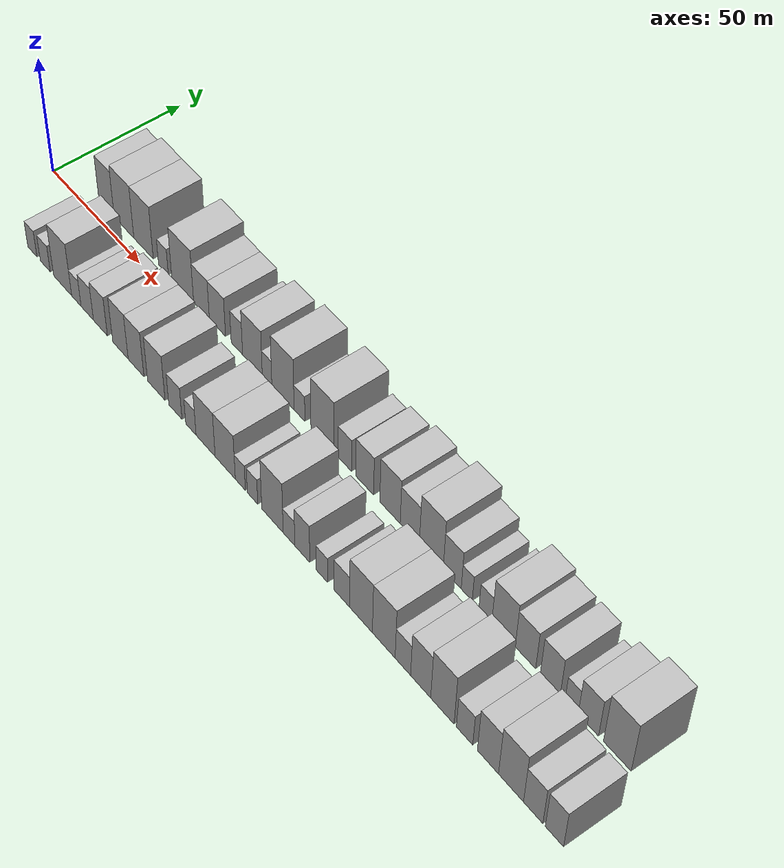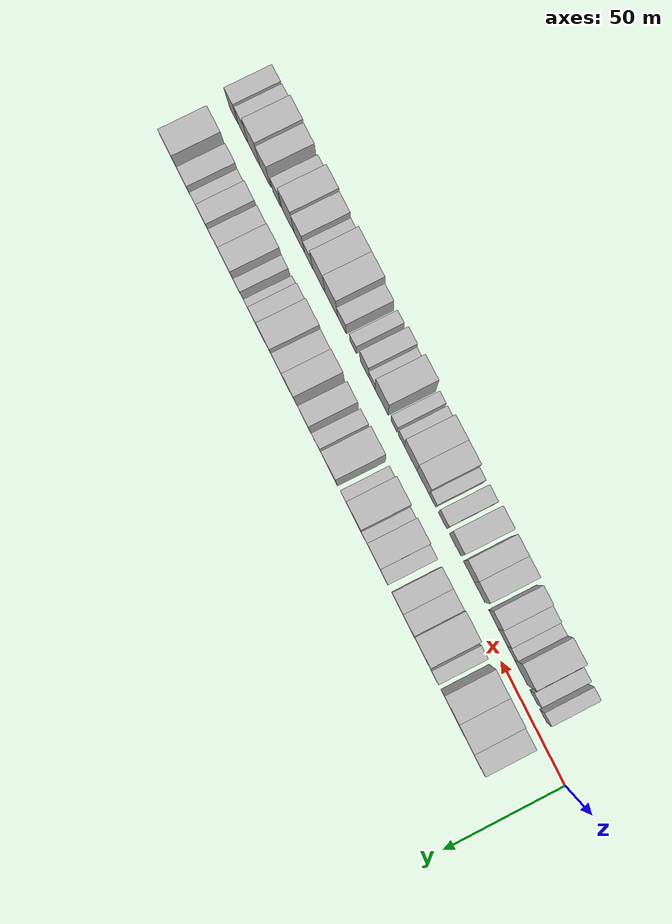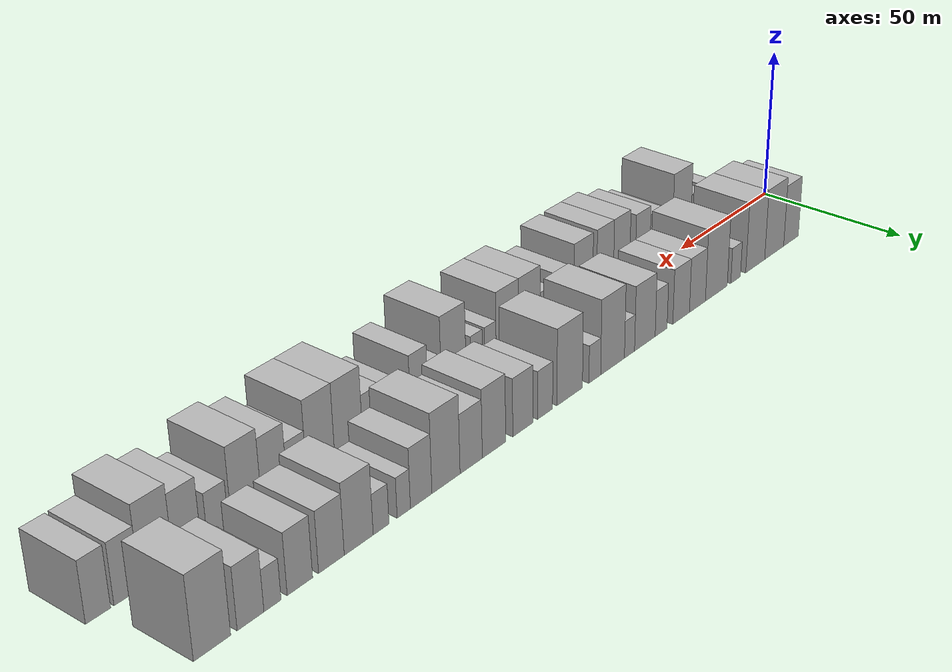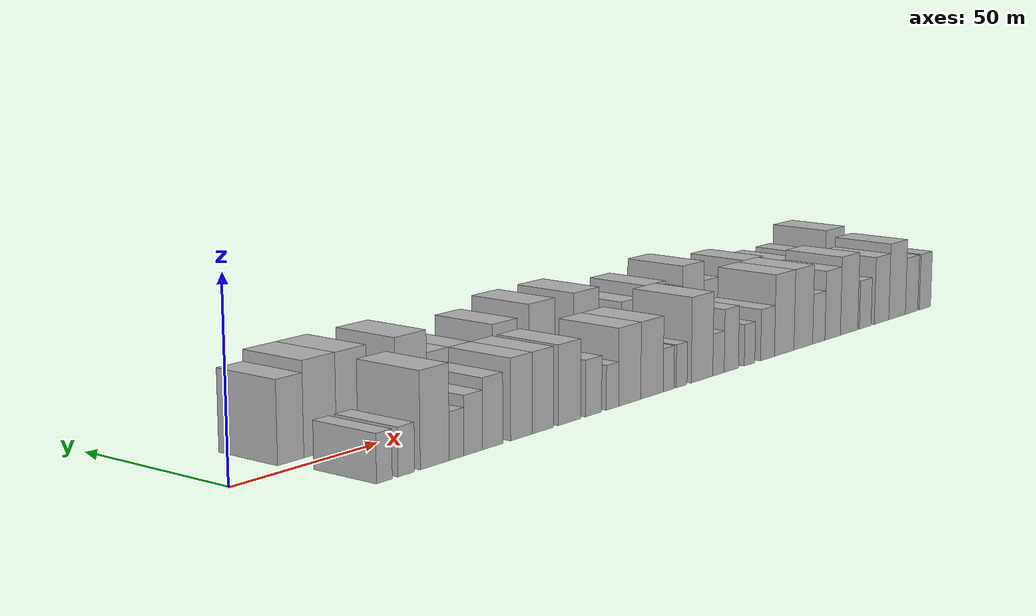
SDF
<sdf version="1.6">
 <world name="default">
  <scene>
   <sky><clouds><speed>12</speed></clouds></sky>
   <ambient>0.4 0.4 0.4 1</ambient>
   <background>0.7 0.7 0.7 1</background>
   <shadows>1</shadows>
  </scene>
  <gravity>0 0 -9.8066</gravity>
  <magnetic_field>6e-06 2.3e-05 -4.2e-05</magnetic_field>
  <physics default="0" name="default_physics" type="ode">
   <ode>
    <solver>
     <type>quick</type>
     <iters>10</iters>
     <sor>1.0</sor>
     <use_dynamic_moi_rescaling>0</use_dynamic_moi_rescaling>
    </solver>
    <constraints>
     <cfm>0</cfm>
     <erp>0.2</erp>
     <contact_max_correcting_vel>100</contact_max_correcting_vel>
     <contact_surface_layer>0.001</contact_surface_layer>
    </constraints>
   </ode>
   <max_step_size>0.004</max_step_size>
   <real_time_factor>1</real_time_factor>
   <real_time_update_rate>250</real_time_update_rate>
  </physics>
  <light name="sun" type="directional">
   <pose>0 0 10 0 0 0</pose>
   <diffuse>0.8 0.8 0.8 1</diffuse>
   <specular>0.2 0.2 0.2 1</specular>
   <attenuation>
    <range>1000</range>
    <constant>0.9</constant>
    <linear>0.01</linear>
    <quadratic>0.001</quadratic>
   </attenuation>
   <direction>-0.5 0.1 -0.9</direction>
  </light>
  <model name="building_1">
   <static>1</static>
   <pose>24.4363 14.5000 0 0.000000 0.000000 1.570796</pose>
   <link name="link">
    <pose>0 0 10.50 0 0 0</pose>
    <collision name="collision"><geometry><box><size>20.0000 8.8725 21.0000</size></box></geometry></collision>
    <visual name="visual">
     <cast_shadows>0</cast_shadows>
     <geometry><box><size>20.0000 8.8725 21.0000</size></box></geometry>
     <material>
      <script>
       <uri>model://HANNAS_wall/materials/scripts</uri>
       <uri>model://HANNAS_wall/materials/textures</uri>
       <name>vrc/HANNAS_wall</name>
      </script>
     </material>
    </visual>
   </link>
  </model>
  <model name="building_2">
   <static>1</static>
   <pose>34.5128 14.5000 0 0.000000 0.000000 1.570796</pose>
   <link name="link">
    <pose>0 0 12.00 0 0 0</pose>
    <collision name="collision"><geometry><box><size>20.0000 11.2806 24.0000</size></box></geometry></collision>
    <visual name="visual">
     <cast_shadows>0</cast_shadows>
     <geometry><box><size>20.0000 11.2806 24.0000</size></box></geometry>
     <material>
      <script>
       <uri>model://HANNAS_wall/materials/scripts</uri>
       <uri>model://HANNAS_wall/materials/textures</uri>
       <name>vrc/HANNAS_wall</name>
      </script>
     </material>
    </visual>
   </link>
  </model>
  <model name="building_3">
   <static>1</static>
   <pose>45.6453 14.5000 0 0.000000 0.000000 1.570796</pose>
   <link name="link">
    <pose>0 0 12.00 0 0 0</pose>
    <collision name="collision"><geometry><box><size>20.0000 10.9844 24.0000</size></box></geometry></collision>
    <visual name="visual">
     <cast_shadows>0</cast_shadows>
     <geometry><box><size>20.0000 10.9844 24.0000</size></box></geometry>
     <material>
      <script>
       <uri>model://HANNAS_wall/materials/scripts</uri>
       <uri>model://HANNAS_wall/materials/textures</uri>
       <name>vrc/HANNAS_wall</name>
      </script>
     </material>
    </visual>
   </link>
  </model>
  <model name="building_4">
   <static>1</static>
   <pose>56.8552 14.5000 0 0.000000 0.000000 1.570796</pose>
   <link name="link">
    <pose>0 0 6.00 0 0 0</pose>
    <collision name="collision"><geometry><box><size>20.0000 5.4354 12.0000</size></box></geometry></collision>
    <visual name="visual">
     <cast_shadows>0</cast_shadows>
     <geometry><box><size>20.0000 5.4354 12.0000</size></box></geometry>
     <material>
      <script>
       <uri>model://HANNAS_wall/materials/scripts</uri>
       <uri>model://HANNAS_wall/materials/textures</uri>
       <name>vrc/HANNAS_wall</name>
      </script>
     </material>
    </visual>
   </link>
  </model>
  <model name="building_5">
   <static>1</static>
   <pose>67.5638 14.5000 0 0.000000 0.000000 1.570796</pose>
   <link name="link">
    <pose>0 0 12.00 0 0 0</pose>
    <collision name="collision"><geometry><box><size>20.0000 11.9817 24.0000</size></box></geometry></collision>
    <visual name="visual">
     <cast_shadows>0</cast_shadows>
     <geometry><box><size>20.0000 11.9817 24.0000</size></box></geometry>
     <material>
      <script>
       <uri>model://HANNAS_wall/materials/scripts</uri>
       <uri>model://HANNAS_wall/materials/textures</uri>
       <name>vrc/HANNAS_wall</name>
      </script>
     </material>
    </visual>
   </link>
  </model>
  <model name="building_6">
   <static>1</static>
   <pose>77.8394 14.5000 0 0.000000 0.000000 1.570796</pose>
   <link name="link">
    <pose>0 0 9.00 0 0 0</pose>
    <collision name="collision"><geometry><box><size>20.0000 8.5696 18.0000</size></box></geometry></collision>
    <visual name="visual">
     <cast_shadows>0</cast_shadows>
     <geometry><box><size>20.0000 8.5696 18.0000</size></box></geometry>
     <material>
      <script>
       <uri>model://HANNAS_wall/materials/scripts</uri>
       <uri>model://HANNAS_wall/materials/textures</uri>
       <name>vrc/HANNAS_wall</name>
      </script>
     </material>
    </visual>
   </link>
  </model>
  <model name="building_7">
   <static>1</static>
   <pose>86.4592 14.5000 0 0.000000 0.000000 1.570796</pose>
   <link name="link">
    <pose>0 0 9.00 0 0 0</pose>
    <collision name="collision"><geometry><box><size>20.0000 8.6700 18.0000</size></box></geometry></collision>
    <visual name="visual">
     <cast_shadows>0</cast_shadows>
     <geometry><box><size>20.0000 8.6700 18.0000</size></box></geometry>
     <material>
      <script>
       <uri>model://HANNAS_wall/materials/scripts</uri>
       <uri>model://HANNAS_wall/materials/textures</uri>
       <name>vrc/HANNAS_wall</name>
      </script>
     </material>
    </visual>
   </link>
  </model>
  <model name="building_8">
   <static>1</static>
   <pose>96.8167 14.5000 0 0.000000 0.000000 1.570796</pose>
   <link name="link">
    <pose>0 0 7.50 0 0 0</pose>
    <collision name="collision"><geometry><box><size>20.0000 6.0451 15.0000</size></box></geometry></collision>
    <visual name="visual">
     <cast_shadows>0</cast_shadows>
     <geometry><box><size>20.0000 6.0451 15.0000</size></box></geometry>
     <material>
      <script>
       <uri>model://HANNAS_wall/materials/scripts</uri>
       <uri>model://HANNAS_wall/materials/textures</uri>
       <name>vrc/HANNAS_wall</name>
      </script>
     </material>
    </visual>
   </link>
  </model>
  <model name="building_9">
   <static>1</static>
   <pose>104.9794 14.5000 0 0.000000 0.000000 1.570796</pose>
   <link name="link">
    <pose>0 0 10.50 0 0 0</pose>
    <collision name="collision"><geometry><box><size>20.0000 10.2803 21.0000</size></box></geometry></collision>
    <visual name="visual">
     <cast_shadows>0</cast_shadows>
     <geometry><box><size>20.0000 10.2803 21.0000</size></box></geometry>
     <material>
      <script>
       <uri>model://HANNAS_wall/materials/scripts</uri>
       <uri>model://HANNAS_wall/materials/textures</uri>
       <name>vrc/HANNAS_wall</name>
      </script>
     </material>
    </visual>
   </link>
  </model>
  <model name="building_10">
   <static>1</static>
   <pose>112.5928 14.5000 0 0.000000 0.000000 1.570796</pose>
   <link name="link">
    <pose>0 0 6.00 0 0 0</pose>
    <collision name="collision"><geometry><box><size>20.0000 4.9466 12.0000</size></box></geometry></collision>
    <visual name="visual">
     <cast_shadows>0</cast_shadows>
     <geometry><box><size>20.0000 4.9466 12.0000</size></box></geometry>
     <material>
      <script>
       <uri>model://HANNAS_wall/materials/scripts</uri>
       <uri>model://HANNAS_wall/materials/textures</uri>
       <name>vrc/HANNAS_wall</name>
      </script>
     </material>
    </visual>
   </link>
  </model>
  <model name="building_11">
   <static>1</static>
   <pose>120.7552 14.5000 0 0.000000 0.000000 1.570796</pose>
   <link name="link">
    <pose>0 0 12.00 0 0 0</pose>
    <collision name="collision"><geometry><box><size>20.0000 11.3781 24.0000</size></box></geometry></collision>
    <visual name="visual">
     <cast_shadows>0</cast_shadows>
     <geometry><box><size>20.0000 11.3781 24.0000</size></box></geometry>
     <material>
      <script>
       <uri>model://HANNAS_wall/materials/scripts</uri>
       <uri>model://HANNAS_wall/materials/textures</uri>
       <name>vrc/HANNAS_wall</name>
      </script>
     </material>
    </visual>
   </link>
  </model>
  <model name="building_12">
   <static>1</static>
   <pose>129.1817 14.5000 0 0.000000 0.000000 1.570796</pose>
   <link name="link">
    <pose>0 0 6.00 0 0 0</pose>
    <collision name="collision"><geometry><box><size>20.0000 5.4750 12.0000</size></box></geometry></collision>
    <visual name="visual">
     <cast_shadows>0</cast_shadows>
     <geometry><box><size>20.0000 5.4750 12.0000</size></box></geometry>
     <material>
      <script>
       <uri>model://HANNAS_wall/materials/scripts</uri>
       <uri>model://HANNAS_wall/materials/textures</uri>
       <name>vrc/HANNAS_wall</name>
      </script>
     </material>
    </visual>
   </link>
  </model>
  <model name="building_13">
   <static>1</static>
   <pose>140.6729 14.5000 0 0.000000 0.000000 1.570796</pose>
   <link name="link">
    <pose>0 0 12.00 0 0 0</pose>
    <collision name="collision"><geometry><box><size>20.0000 11.5074 24.0000</size></box></geometry></collision>
    <visual name="visual">
     <cast_shadows>0</cast_shadows>
     <geometry><box><size>20.0000 11.5074 24.0000</size></box></geometry>
     <material>
      <script>
       <uri>model://HANNAS_wall/materials/scripts</uri>
       <uri>model://HANNAS_wall/materials/textures</uri>
       <name>vrc/HANNAS_wall</name>
      </script>
     </material>
    </visual>
   </link>
  </model>
  <model name="building_14">
   <static>1</static>
   <pose>151.7256 14.5000 0 0.000000 0.000000 1.570796</pose>
   <link name="link">
    <pose>0 0 7.50 0 0 0</pose>
    <collision name="collision"><geometry><box><size>20.0000 6.5979 15.0000</size></box></geometry></collision>
    <visual name="visual">
     <cast_shadows>0</cast_shadows>
     <geometry><box><size>20.0000 6.5979 15.0000</size></box></geometry>
     <material>
      <script>
       <uri>model://HANNAS_wall/materials/scripts</uri>
       <uri>model://HANNAS_wall/materials/textures</uri>
       <name>vrc/HANNAS_wall</name>
      </script>
     </material>
    </visual>
   </link>
  </model>
  <model name="building_15">
   <static>1</static>
   <pose>161.3414 14.5000 0 0.000000 0.000000 1.570796</pose>
   <link name="link">
    <pose>0 0 9.00 0 0 0</pose>
    <collision name="collision"><geometry><box><size>20.0000 8.6339 18.0000</size></box></geometry></collision>
    <visual name="visual">
     <cast_shadows>0</cast_shadows>
     <geometry><box><size>20.0000 8.6339 18.0000</size></box></geometry>
     <material>
      <script>
       <uri>model://HANNAS_wall/materials/scripts</uri>
       <uri>model://HANNAS_wall/materials/textures</uri>
       <name>vrc/HANNAS_wall</name>
      </script>
     </material>
    </visual>
   </link>
  </model>
  <model name="building_16">
   <static>1</static>
   <pose>173.5010 14.5000 0 0.000000 0.000000 1.570796</pose>
   <link name="link">
    <pose>0 0 10.50 0 0 0</pose>
    <collision name="collision"><geometry><box><size>20.0000 9.6852 21.0000</size></box></geometry></collision>
    <visual name="visual">
     <cast_shadows>0</cast_shadows>
     <geometry><box><size>20.0000 9.6852 21.0000</size></box></geometry>
     <material>
      <script>
       <uri>model://HANNAS_wall/materials/scripts</uri>
       <uri>model://HANNAS_wall/materials/textures</uri>
       <name>vrc/HANNAS_wall</name>
      </script>
     </material>
    </visual>
   </link>
  </model>
  <model name="building_17">
   <static>1</static>
   <pose>182.8265 14.5000 0 0.000000 0.000000 1.570796</pose>
   <link name="link">
    <pose>0 0 9.00 0 0 0</pose>
    <collision name="collision"><geometry><box><size>20.0000 8.9659 18.0000</size></box></geometry></collision>
    <visual name="visual">
     <cast_shadows>0</cast_shadows>
     <geometry><box><size>20.0000 8.9659 18.0000</size></box></geometry>
     <material>
      <script>
       <uri>model://HANNAS_wall/materials/scripts</uri>
       <uri>model://HANNAS_wall/materials/textures</uri>
       <name>vrc/HANNAS_wall</name>
      </script>
     </material>
    </visual>
   </link>
  </model>
  <model name="building_18">
   <static>1</static>
   <pose>192.8159 14.5000 0 0.000000 0.000000 1.570796</pose>
   <link name="link">
    <pose>0 0 12.00 0 0 0</pose>
    <collision name="collision"><geometry><box><size>20.0000 11.0129 24.0000</size></box></geometry></collision>
    <visual name="visual">
     <cast_shadows>0</cast_shadows>
     <geometry><box><size>20.0000 11.0129 24.0000</size></box></geometry>
     <material>
      <script>
       <uri>model://HANNAS_wall/materials/scripts</uri>
       <uri>model://HANNAS_wall/materials/textures</uri>
       <name>vrc/HANNAS_wall</name>
      </script>
     </material>
    </visual>
   </link>
  </model>
  <model name="building_19">
   <static>1</static>
   <pose>202.4088 14.5000 0 0.000000 0.000000 1.570796</pose>
   <link name="link">
    <pose>0 0 9.00 0 0 0</pose>
    <collision name="collision"><geometry><box><size>20.0000 8.1729 18.0000</size></box></geometry></collision>
    <visual name="visual">
     <cast_shadows>0</cast_shadows>
     <geometry><box><size>20.0000 8.1729 18.0000</size></box></geometry>
     <material>
      <script>
       <uri>model://HANNAS_wall/materials/scripts</uri>
       <uri>model://HANNAS_wall/materials/textures</uri>
       <name>vrc/HANNAS_wall</name>
      </script>
     </material>
    </visual>
   </link>
  </model>
  <model name="building_20">
   <static>1</static>
   <pose>208.9782 14.5000 0 0.000000 0.000000 1.570796</pose>
   <link name="link">
    <pose>0 0 6.00 0 0 0</pose>
    <collision name="collision"><geometry><box><size>20.0000 4.9659 12.0000</size></box></geometry></collision>
    <visual name="visual">
     <cast_shadows>0</cast_shadows>
     <geometry><box><size>20.0000 4.9659 12.0000</size></box></geometry>
     <material>
      <script>
       <uri>model://HANNAS_wall/materials/scripts</uri>
       <uri>model://HANNAS_wall/materials/textures</uri>
       <name>vrc/HANNAS_wall</name>
      </script>
     </material>
    </visual>
   </link>
  </model>
  <model name="building_21">
   <static>1</static>
   <pose>217.3360 14.5000 0 0.000000 0.000000 1.570796</pose>
   <link name="link">
    <pose>0 0 6.00 0 0 0</pose>
    <collision name="collision"><geometry><box><size>20.0000 5.7497 12.0000</size></box></geometry></collision>
    <visual name="visual">
     <cast_shadows>0</cast_shadows>
     <geometry><box><size>20.0000 5.7497 12.0000</size></box></geometry>
     <material>
      <script>
       <uri>model://HANNAS_wall/materials/scripts</uri>
       <uri>model://HANNAS_wall/materials/textures</uri>
       <name>vrc/HANNAS_wall</name>
      </script>
     </material>
    </visual>
   </link>
  </model>
  <model name="building_22">
   <static>1</static>
   <pose>225.3404 14.5000 0 0.000000 0.000000 1.570796</pose>
   <link name="link">
    <pose>0 0 10.50 0 0 0</pose>
    <collision name="collision"><geometry><box><size>20.0000 10.2591 21.0000</size></box></geometry></collision>
    <visual name="visual">
     <cast_shadows>0</cast_shadows>
     <geometry><box><size>20.0000 10.2591 21.0000</size></box></geometry>
     <material>
      <script>
       <uri>model://HANNAS_wall/materials/scripts</uri>
       <uri>model://HANNAS_wall/materials/textures</uri>
       <name>vrc/HANNAS_wall</name>
      </script>
     </material>
    </visual>
   </link>
  </model>
  <model name="building_23">
   <static>1</static>
   <pose>234.8918 14.5000 0 0.000000 0.000000 1.570796</pose>
   <link name="link">
    <pose>0 0 9.00 0 0 0</pose>
    <collision name="collision"><geometry><box><size>20.0000 8.8437 18.0000</size></box></geometry></collision>
    <visual name="visual">
     <cast_shadows>0</cast_shadows>
     <geometry><box><size>20.0000 8.8437 18.0000</size></box></geometry>
     <material>
      <script>
       <uri>model://HANNAS_wall/materials/scripts</uri>
       <uri>model://HANNAS_wall/materials/textures</uri>
       <name>vrc/HANNAS_wall</name>
      </script>
     </material>
    </visual>
   </link>
  </model>
  <model name="building_24">
   <static>1</static>
   <pose>245.5570 14.5000 0 0.000000 0.000000 1.570796</pose>
   <link name="link">
    <pose>0 0 9.00 0 0 0</pose>
    <collision name="collision"><geometry><box><size>20.0000 8.4868 18.0000</size></box></geometry></collision>
    <visual name="visual">
     <cast_shadows>0</cast_shadows>
     <geometry><box><size>20.0000 8.4868 18.0000</size></box></geometry>
     <material>
      <script>
       <uri>model://HANNAS_wall/materials/scripts</uri>
       <uri>model://HANNAS_wall/materials/textures</uri>
       <name>vrc/HANNAS_wall</name>
      </script>
     </material>
    </visual>
   </link>
  </model>
  <model name="building_25">
   <static>1</static>
   <pose>254.5691 14.5000 0 0.000000 0.000000 1.570796</pose>
   <link name="link">
    <pose>0 0 6.00 0 0 0</pose>
    <collision name="collision"><geometry><box><size>20.0000 5.5375 12.0000</size></box></geometry></collision>
    <visual name="visual">
     <cast_shadows>0</cast_shadows>
     <geometry><box><size>20.0000 5.5375 12.0000</size></box></geometry>
     <material>
      <script>
       <uri>model://HANNAS_wall/materials/scripts</uri>
       <uri>model://HANNAS_wall/materials/textures</uri>
       <name>vrc/HANNAS_wall</name>
      </script>
     </material>
    </visual>
   </link>
  </model>
  <model name="building_26">
   <static>1</static>
   <pose>261.5695 14.5000 0 0.000000 0.000000 1.570796</pose>
   <link name="link">
    <pose>0 0 9.00 0 0 0</pose>
    <collision name="collision"><geometry><box><size>20.0000 8.4633 18.0000</size></box></geometry></collision>
    <visual name="visual">
     <cast_shadows>0</cast_shadows>
     <geometry><box><size>20.0000 8.4633 18.0000</size></box></geometry>
     <material>
      <script>
       <uri>model://HANNAS_wall/materials/scripts</uri>
       <uri>model://HANNAS_wall/materials/textures</uri>
       <name>vrc/HANNAS_wall</name>
      </script>
     </material>
    </visual>
   </link>
  </model>
  <model name="building_27">
   <static>1</static>
   <pose>273.4827 14.5000 0 0.000000 0.000000 1.570796</pose>
   <link name="link">
    <pose>0 0 12.00 0 0 0</pose>
    <collision name="collision"><geometry><box><size>20.0000 11.3630 24.0000</size></box></geometry></collision>
    <visual name="visual">
     <cast_shadows>0</cast_shadows>
     <geometry><box><size>20.0000 11.3630 24.0000</size></box></geometry>
     <material>
      <script>
       <uri>model://HANNAS_wall/materials/scripts</uri>
       <uri>model://HANNAS_wall/materials/textures</uri>
       <name>vrc/HANNAS_wall</name>
      </script>
     </material>
    </visual>
   </link>
  </model>
  <model name="building_28">
   <static>1</static>
   <pose>25.6901 -14.5000 0 0.000000 0.000000 1.570796</pose>
   <link name="link">
    <pose>0 0 6.00 0 0 0</pose>
    <collision name="collision"><geometry><box><size>20.0000 5.3802 12.0000</size></box></geometry></collision>
    <visual name="visual">
     <cast_shadows>0</cast_shadows>
     <geometry><box><size>20.0000 5.3802 12.0000</size></box></geometry>
     <material>
      <script>
       <uri>model://HANNAS_wall/materials/scripts</uri>
       <uri>model://HANNAS_wall/materials/textures</uri>
       <name>vrc/HANNAS_wall</name>
      </script>
     </material>
    </visual>
   </link>
  </model>
  <model name="building_29">
   <static>1</static>
   <pose>33.2813 -14.5000 0 0.000000 0.000000 1.570796</pose>
   <link name="link">
    <pose>0 0 6.00 0 0 0</pose>
    <collision name="collision"><geometry><box><size>20.0000 5.8022 12.0000</size></box></geometry></collision>
    <visual name="visual">
     <cast_shadows>0</cast_shadows>
     <geometry><box><size>20.0000 5.8022 12.0000</size></box></geometry>
     <material>
      <script>
       <uri>model://HANNAS_wall/materials/scripts</uri>
       <uri>model://HANNAS_wall/materials/textures</uri>
       <name>vrc/HANNAS_wall</name>
      </script>
     </material>
    </visual>
   </link>
  </model>
  <model name="building_30">
   <static>1</static>
   <pose>43.3907 -14.5000 0 0.000000 0.000000 1.570796</pose>
   <link name="link">
    <pose>0 0 12.00 0 0 0</pose>
    <collision name="collision"><geometry><box><size>20.0000 10.4165 24.0000</size></box></geometry></collision>
    <visual name="visual">
     <cast_shadows>0</cast_shadows>
     <geometry><box><size>20.0000 10.4165 24.0000</size></box></geometry>
     <material>
      <script>
       <uri>model://HANNAS_wall/materials/scripts</uri>
       <uri>model://HANNAS_wall/materials/textures</uri>
       <name>vrc/HANNAS_wall</name>
      </script>
     </material>
    </visual>
   </link>
  </model>
  <model name="building_31">
   <static>1</static>
   <pose>51.2833 -14.5000 0 0.000000 0.000000 1.570796</pose>
   <link name="link">
    <pose>0 0 6.00 0 0 0</pose>
    <collision name="collision"><geometry><box><size>20.0000 5.3687 12.0000</size></box></geometry></collision>
    <visual name="visual">
     <cast_shadows>0</cast_shadows>
     <geometry><box><size>20.0000 5.3687 12.0000</size></box></geometry>
     <material>
      <script>
       <uri>model://HANNAS_wall/materials/scripts</uri>
       <uri>model://HANNAS_wall/materials/textures</uri>
       <name>vrc/HANNAS_wall</name>
      </script>
     </material>
    </visual>
   </link>
  </model>
  <model name="building_32">
   <static>1</static>
   <pose>57.4731 -14.5000 0 0.000000 0.000000 1.570796</pose>
   <link name="link">
    <pose>0 0 7.50 0 0 0</pose>
    <collision name="collision"><geometry><box><size>20.0000 7.0110 15.0000</size></box></geometry></collision>
    <visual name="visual">
     <cast_shadows>0</cast_shadows>
     <geometry><box><size>20.0000 7.0110 15.0000</size></box></geometry>
     <material>
      <script>
       <uri>model://HANNAS_wall/materials/scripts</uri>
       <uri>model://HANNAS_wall/materials/textures</uri>
       <name>vrc/HANNAS_wall</name>
      </script>
     </material>
    </visual>
   </link>
  </model>
  <model name="building_33">
   <static>1</static>
   <pose>64.8800 -14.5000 0 0.000000 0.000000 1.570796</pose>
   <link name="link">
    <pose>0 0 9.00 0 0 0</pose>
    <collision name="collision"><geometry><box><size>20.0000 7.8027 18.0000</size></box></geometry></collision>
    <visual name="visual">
     <cast_shadows>0</cast_shadows>
     <geometry><box><size>20.0000 7.8027 18.0000</size></box></geometry>
     <material>
      <script>
       <uri>model://HANNAS_wall/materials/scripts</uri>
       <uri>model://HANNAS_wall/materials/textures</uri>
       <name>vrc/HANNAS_wall</name>
      </script>
     </material>
    </visual>
   </link>
  </model>
  <model name="building_34">
   <static>1</static>
   <pose>76.0334 -14.5000 0 0.000000 0.000000 1.570796</pose>
   <link name="link">
    <pose>0 0 10.50 0 0 0</pose>
    <collision name="collision"><geometry><box><size>20.0000 8.5042 21.0000</size></box></geometry></collision>
    <visual name="visual">
     <cast_shadows>0</cast_shadows>
     <geometry><box><size>20.0000 8.5042 21.0000</size></box></geometry>
     <material>
      <script>
       <uri>model://HANNAS_wall/materials/scripts</uri>
       <uri>model://HANNAS_wall/materials/textures</uri>
       <name>vrc/HANNAS_wall</name>
      </script>
     </material>
    </visual>
   </link>
  </model>
  <model name="building_35">
   <static>1</static>
   <pose>84.5904 -14.5000 0 0.000000 0.000000 1.570796</pose>
   <link name="link">
    <pose>0 0 10.50 0 0 0</pose>
    <collision name="collision"><geometry><box><size>20.0000 8.6099 21.0000</size></box></geometry></collision>
    <visual name="visual">
     <cast_shadows>0</cast_shadows>
     <geometry><box><size>20.0000 8.6099 21.0000</size></box></geometry>
     <material>
      <script>
       <uri>model://HANNAS_wall/materials/scripts</uri>
       <uri>model://HANNAS_wall/materials/textures</uri>
       <name>vrc/HANNAS_wall</name>
      </script>
     </material>
    </visual>
   </link>
  </model>
  <model name="building_36">
   <static>1</static>
   <pose>95.5782 -14.5000 0 0.000000 0.000000 1.570796</pose>
   <link name="link">
    <pose>0 0 10.50 0 0 0</pose>
    <collision name="collision"><geometry><box><size>20.0000 9.3658 21.0000</size></box></geometry></collision>
    <visual name="visual">
     <cast_shadows>0</cast_shadows>
     <geometry><box><size>20.0000 9.3658 21.0000</size></box></geometry>
     <material>
      <script>
       <uri>model://HANNAS_wall/materials/scripts</uri>
       <uri>model://HANNAS_wall/materials/textures</uri>
       <name>vrc/HANNAS_wall</name>
      </script>
     </material>
    </visual>
   </link>
  </model>
  <model name="building_37">
   <static>1</static>
   <pose>105.7446 -14.5000 0 0.000000 0.000000 1.570796</pose>
   <link name="link">
    <pose>0 0 7.50 0 0 0</pose>
    <collision name="collision"><geometry><box><size>20.0000 6.9671 15.0000</size></box></geometry></collision>
    <visual name="visual">
     <cast_shadows>0</cast_shadows>
     <geometry><box><size>20.0000 6.9671 15.0000</size></box></geometry>
     <material>
      <script>
       <uri>model://HANNAS_wall/materials/scripts</uri>
       <uri>model://HANNAS_wall/materials/textures</uri>
       <name>vrc/HANNAS_wall</name>
      </script>
     </material>
    </visual>
   </link>
  </model>
  <model name="building_38">
   <static>1</static>
   <pose>113.9249 -14.5000 0 0.000000 0.000000 1.570796</pose>
   <link name="link">
    <pose>0 0 6.00 0 0 0</pose>
    <collision name="collision"><geometry><box><size>20.0000 5.3934 12.0000</size></box></geometry></collision>
    <visual name="visual">
     <cast_shadows>0</cast_shadows>
     <geometry><box><size>20.0000 5.3934 12.0000</size></box></geometry>
     <material>
      <script>
       <uri>model://HANNAS_wall/materials/scripts</uri>
       <uri>model://HANNAS_wall/materials/textures</uri>
       <name>vrc/HANNAS_wall</name>
      </script>
     </material>
    </visual>
   </link>
  </model>
  <model name="building_39">
   <static>1</static>
   <pose>121.5765 -14.5000 0 0.000000 0.000000 1.570796</pose>
   <link name="link">
    <pose>0 0 10.50 0 0 0</pose>
    <collision name="collision"><geometry><box><size>20.0000 9.9099 21.0000</size></box></geometry></collision>
    <visual name="visual">
     <cast_shadows>0</cast_shadows>
     <geometry><box><size>20.0000 9.9099 21.0000</size></box></geometry>
     <material>
      <script>
       <uri>model://HANNAS_wall/materials/scripts</uri>
       <uri>model://HANNAS_wall/materials/textures</uri>
       <name>vrc/HANNAS_wall</name>
      </script>
     </material>
    </visual>
   </link>
  </model>
  <model name="building_40">
   <static>1</static>
   <pose>131.6816 -14.5000 0 0.000000 0.000000 1.570796</pose>
   <link name="link">
    <pose>0 0 10.50 0 0 0</pose>
    <collision name="collision"><geometry><box><size>20.0000 10.3004 21.0000</size></box></geometry></collision>
    <visual name="visual">
     <cast_shadows>0</cast_shadows>
     <geometry><box><size>20.0000 10.3004 21.0000</size></box></geometry>
     <material>
      <script>
       <uri>model://HANNAS_wall/materials/scripts</uri>
       <uri>model://HANNAS_wall/materials/textures</uri>
       <name>vrc/HANNAS_wall</name>
      </script>
     </material>
    </visual>
   </link>
  </model>
  <model name="building_41">
   <static>1</static>
   <pose>139.3574 -14.5000 0 0.000000 0.000000 1.570796</pose>
   <link name="link">
    <pose>0 0 6.00 0 0 0</pose>
    <collision name="collision"><geometry><box><size>20.0000 5.0512 12.0000</size></box></geometry></collision>
    <visual name="visual">
     <cast_shadows>0</cast_shadows>
     <geometry><box><size>20.0000 5.0512 12.0000</size></box></geometry>
     <material>
      <script>
       <uri>model://HANNAS_wall/materials/scripts</uri>
       <uri>model://HANNAS_wall/materials/textures</uri>
       <name>vrc/HANNAS_wall</name>
      </script>
     </material>
    </visual>
   </link>
  </model>
  <model name="building_42">
   <static>1</static>
   <pose>145.4929 -14.5000 0 0.000000 0.000000 1.570796</pose>
   <link name="link">
    <pose>0 0 6.00 0 0 0</pose>
    <collision name="collision"><geometry><box><size>20.0000 5.2199 12.0000</size></box></geometry></collision>
    <visual name="visual">
     <cast_shadows>0</cast_shadows>
     <geometry><box><size>20.0000 5.2199 12.0000</size></box></geometry>
     <material>
      <script>
       <uri>model://HANNAS_wall/materials/scripts</uri>
       <uri>model://HANNAS_wall/materials/textures</uri>
       <name>vrc/HANNAS_wall</name>
      </script>
     </material>
    </visual>
   </link>
  </model>
  <model name="building_43">
   <static>1</static>
   <pose>155.3726 -14.5000 0 0.000000 0.000000 1.570796</pose>
   <link name="link">
    <pose>0 0 12.00 0 0 0</pose>
    <collision name="collision"><geometry><box><size>20.0000 10.5393 24.0000</size></box></geometry></collision>
    <visual name="visual">
     <cast_shadows>0</cast_shadows>
     <geometry><box><size>20.0000 10.5393 24.0000</size></box></geometry>
     <material>
      <script>
       <uri>model://HANNAS_wall/materials/scripts</uri>
       <uri>model://HANNAS_wall/materials/textures</uri>
       <name>vrc/HANNAS_wall</name>
      </script>
     </material>
    </visual>
   </link>
  </model>
  <model name="building_44">
   <static>1</static>
   <pose>163.4774 -14.5000 0 0.000000 0.000000 1.570796</pose>
   <link name="link">
    <pose>0 0 6.00 0 0 0</pose>
    <collision name="collision"><geometry><box><size>20.0000 5.6702 12.0000</size></box></geometry></collision>
    <visual name="visual">
     <cast_shadows>0</cast_shadows>
     <geometry><box><size>20.0000 5.6702 12.0000</size></box></geometry>
     <material>
      <script>
       <uri>model://HANNAS_wall/materials/scripts</uri>
       <uri>model://HANNAS_wall/materials/textures</uri>
       <name>vrc/HANNAS_wall</name>
      </script>
     </material>
    </visual>
   </link>
  </model>
  <model name="building_45">
   <static>1</static>
   <pose>169.9142 -14.5000 0 0.000000 0.000000 1.570796</pose>
   <link name="link">
    <pose>0 0 9.00 0 0 0</pose>
    <collision name="collision"><geometry><box><size>20.0000 7.2034 18.0000</size></box></geometry></collision>
    <visual name="visual">
     <cast_shadows>0</cast_shadows>
     <geometry><box><size>20.0000 7.2034 18.0000</size></box></geometry>
     <material>
      <script>
       <uri>model://HANNAS_wall/materials/scripts</uri>
       <uri>model://HANNAS_wall/materials/textures</uri>
       <name>vrc/HANNAS_wall</name>
      </script>
     </material>
    </visual>
   </link>
  </model>
  <model name="building_46">
   <static>1</static>
   <pose>179.2602 -14.5000 0 0.000000 0.000000 1.570796</pose>
   <link name="link">
    <pose>0 0 6.00 0 0 0</pose>
    <collision name="collision"><geometry><box><size>20.0000 5.4887 12.0000</size></box></geometry></collision>
    <visual name="visual">
     <cast_shadows>0</cast_shadows>
     <geometry><box><size>20.0000 5.4887 12.0000</size></box></geometry>
     <material>
      <script>
       <uri>model://HANNAS_wall/materials/scripts</uri>
       <uri>model://HANNAS_wall/materials/textures</uri>
       <name>vrc/HANNAS_wall</name>
      </script>
     </material>
    </visual>
   </link>
  </model>
  <model name="building_47">
   <static>1</static>
   <pose>188.6819 -14.5000 0 0.000000 0.000000 1.570796</pose>
   <link name="link">
    <pose>0 0 7.50 0 0 0</pose>
    <collision name="collision"><geometry><box><size>20.0000 7.3547 15.0000</size></box></geometry></collision>
    <visual name="visual">
     <cast_shadows>0</cast_shadows>
     <geometry><box><size>20.0000 7.3547 15.0000</size></box></geometry>
     <material>
      <script>
       <uri>model://HANNAS_wall/materials/scripts</uri>
       <uri>model://HANNAS_wall/materials/textures</uri>
       <name>vrc/HANNAS_wall</name>
      </script>
     </material>
    </visual>
   </link>
  </model>
  <model name="building_48">
   <static>1</static>
   <pose>197.6561 -14.5000 0 0.000000 0.000000 1.570796</pose>
   <link name="link">
    <pose>0 0 12.00 0 0 0</pose>
    <collision name="collision"><geometry><box><size>20.0000 10.5936 24.0000</size></box></geometry></collision>
    <visual name="visual">
     <cast_shadows>0</cast_shadows>
     <geometry><box><size>20.0000 10.5936 24.0000</size></box></geometry>
     <material>
      <script>
       <uri>model://HANNAS_wall/materials/scripts</uri>
       <uri>model://HANNAS_wall/materials/textures</uri>
       <name>vrc/HANNAS_wall</name>
      </script>
     </material>
    </visual>
   </link>
  </model>
  <model name="building_49">
   <static>1</static>
   <pose>208.1344 -14.5000 0 0.000000 0.000000 1.570796</pose>
   <link name="link">
    <pose>0 0 12.00 0 0 0</pose>
    <collision name="collision"><geometry><box><size>20.0000 10.3630 24.0000</size></box></geometry></collision>
    <visual name="visual">
     <cast_shadows>0</cast_shadows>
     <geometry><box><size>20.0000 10.3630 24.0000</size></box></geometry>
     <material>
      <script>
       <uri>model://HANNAS_wall/materials/scripts</uri>
       <uri>model://HANNAS_wall/materials/textures</uri>
       <name>vrc/HANNAS_wall</name>
      </script>
     </material>
    </visual>
   </link>
  </model>
  <model name="building_50">
   <static>1</static>
   <pose>216.7969 -14.5000 0 0.000000 0.000000 1.570796</pose>
   <link name="link">
    <pose>0 0 7.50 0 0 0</pose>
    <collision name="collision"><geometry><box><size>20.0000 6.9619 15.0000</size></box></geometry></collision>
    <visual name="visual">
     <cast_shadows>0</cast_shadows>
     <geometry><box><size>20.0000 6.9619 15.0000</size></box></geometry>
     <material>
      <script>
       <uri>model://HANNAS_wall/materials/scripts</uri>
       <uri>model://HANNAS_wall/materials/textures</uri>
       <name>vrc/HANNAS_wall</name>
      </script>
     </material>
    </visual>
   </link>
  </model>
  <model name="building_51">
   <static>1</static>
   <pose>224.7516 -14.5000 0 0.000000 0.000000 1.570796</pose>
   <link name="link">
    <pose>0 0 10.50 0 0 0</pose>
    <collision name="collision"><geometry><box><size>20.0000 8.9475 21.0000</size></box></geometry></collision>
    <visual name="visual">
     <cast_shadows>0</cast_shadows>
     <geometry><box><size>20.0000 8.9475 21.0000</size></box></geometry>
     <material>
      <script>
       <uri>model://HANNAS_wall/materials/scripts</uri>
       <uri>model://HANNAS_wall/materials/textures</uri>
       <name>vrc/HANNAS_wall</name>
      </script>
     </material>
    </visual>
   </link>
  </model>
  <model name="building_52">
   <static>1</static>
   <pose>234.3467 -14.5000 0 0.000000 0.000000 1.570796</pose>
   <link name="link">
    <pose>0 0 12.00 0 0 0</pose>
    <collision name="collision"><geometry><box><size>20.0000 10.2428 24.0000</size></box></geometry></collision>
    <visual name="visual">
     <cast_shadows>0</cast_shadows>
     <geometry><box><size>20.0000 10.2428 24.0000</size></box></geometry>
     <material>
      <script>
       <uri>model://HANNAS_wall/materials/scripts</uri>
       <uri>model://HANNAS_wall/materials/textures</uri>
       <name>vrc/HANNAS_wall</name>
      </script>
     </material>
    </visual>
   </link>
  </model>
  <model name="building_53">
   <static>1</static>
   <pose>243.9899 -14.5000 0 0.000000 0.000000 1.570796</pose>
   <link name="link">
    <pose>0 0 7.50 0 0 0</pose>
    <collision name="collision"><geometry><box><size>20.0000 7.0435 15.0000</size></box></geometry></collision>
    <visual name="visual">
     <cast_shadows>0</cast_shadows>
     <geometry><box><size>20.0000 7.0435 15.0000</size></box></geometry>
     <material>
      <script>
       <uri>model://HANNAS_wall/materials/scripts</uri>
       <uri>model://HANNAS_wall/materials/textures</uri>
       <name>vrc/HANNAS_wall</name>
      </script>
     </material>
    </visual>
   </link>
  </model>
  <model name="building_54">
   <static>1</static>
   <pose>253.9888 -14.5000 0 0.000000 0.000000 1.570796</pose>
   <link name="link">
    <pose>0 0 10.50 0 0 0</pose>
    <collision name="collision"><geometry><box><size>20.0000 8.9544 21.0000</size></box></geometry></collision>
    <visual name="visual">
     <cast_shadows>0</cast_shadows>
     <geometry><box><size>20.0000 8.9544 21.0000</size></box></geometry>
     <material>
      <script>
       <uri>model://HANNAS_wall/materials/scripts</uri>
       <uri>model://HANNAS_wall/materials/textures</uri>
       <name>vrc/HANNAS_wall</name>
      </script>
     </material>
    </visual>
   </link>
  </model>
  <model name="building_55">
   <static>1</static>
   <pose>263.7018 -14.5000 0 0.000000 0.000000 1.570796</pose>
   <link name="link">
    <pose>0 0 12.00 0 0 0</pose>
    <collision name="collision"><geometry><box><size>20.0000 10.4715 24.0000</size></box></geometry></collision>
    <visual name="visual">
     <cast_shadows>0</cast_shadows>
     <geometry><box><size>20.0000 10.4715 24.0000</size></box></geometry>
     <material>
      <script>
       <uri>model://HANNAS_wall/materials/scripts</uri>
       <uri>model://HANNAS_wall/materials/textures</uri>
       <name>vrc/HANNAS_wall</name>
      </script>
     </material>
    </visual>
   </link>
  </model>
  <model name="building_56">
   <static>1</static>
   <pose>272.9209 -14.5000 0 0.000000 0.000000 1.570796</pose>
   <link name="link">
    <pose>0 0 9.00 0 0 0</pose>
    <collision name="collision"><geometry><box><size>20.0000 7.9667 18.0000</size></box></geometry></collision>
    <visual name="visual">
     <cast_shadows>0</cast_shadows>
     <geometry><box><size>20.0000 7.9667 18.0000</size></box></geometry>
     <material>
      <script>
       <uri>model://HANNAS_wall/materials/scripts</uri>
       <uri>model://HANNAS_wall/materials/textures</uri>
       <name>vrc/HANNAS_wall</name>
      </script>
     </material>
    </visual>
   </link>
  </model>
  <model name="building_57">
   <static>1</static>
   <pose>281.6177 -14.5000 0 0.000000 0.000000 1.570796</pose>
   <link name="link">
    <pose>0 0 9.00 0 0 0</pose>
    <collision name="collision"><geometry><box><size>20.0000 7.4269 18.0000</size></box></geometry></collision>
    <visual name="visual">
     <cast_shadows>0</cast_shadows>
     <geometry><box><size>20.0000 7.4269 18.0000</size></box></geometry>
     <material>
      <script>
       <uri>model://HANNAS_wall/materials/scripts</uri>
       <uri>model://HANNAS_wall/materials/textures</uri>
       <name>vrc/HANNAS_wall</name>
      </script>
     </material>
    </visual>
   </link>
  </model>
 </world>
</sdf>
